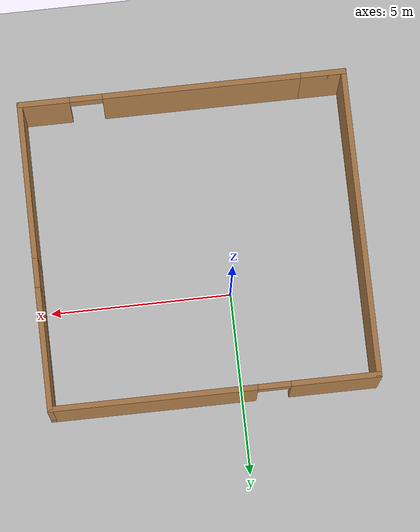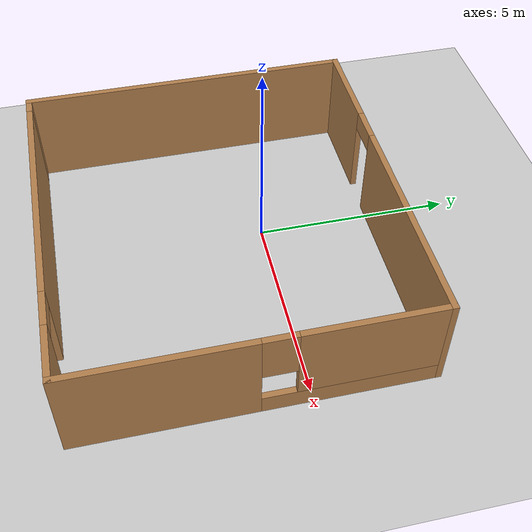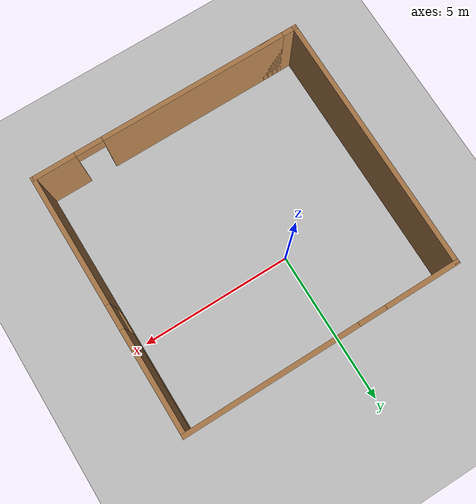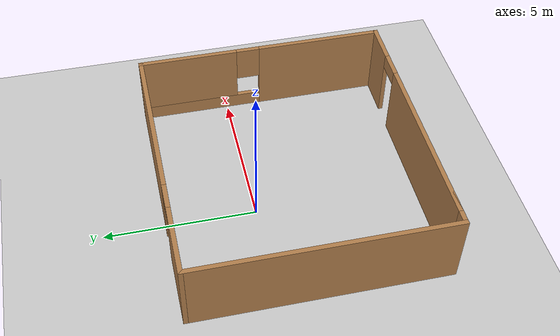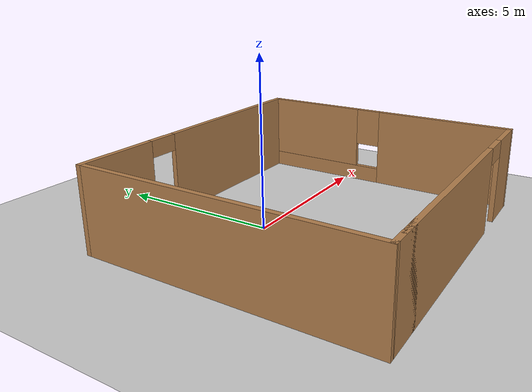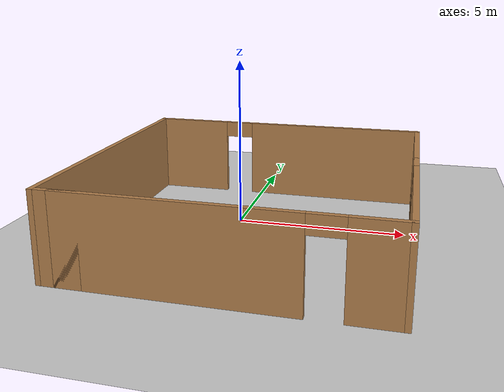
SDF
<sdf version="1.7">
 <world name="default">
  <light name="sun" type="directional">
   <pose>0 0 10 0 -0 0</pose>
   <diffuse>0.8 0.8 0.8 1</diffuse>
   <specular>0.2 0.2 0.2 1</specular>
   <attenuation>
    <range>1000</range>
    <constant>0.9</constant>
    <linear>0.01</linear>
    <quadratic>0.001</quadratic>
   </attenuation>
   <direction>-0.5 0.1 -0.9</direction>
   <spot><inner_angle>0</inner_angle><outer_angle>0</outer_angle><falloff>0</falloff></spot>
  </light>
  <model name="ground_plane">
   <static>1</static>
   <link name="link">
    <collision name="collision">
     <geometry><plane><normal>0 0 1</normal><size>100 100</size></plane></geometry>
     <surface><friction><ode><mu>100</mu><mu2>50</mu2></ode></friction></surface>
    </collision>
    <visual name="visual">
     <cast_shadows>0</cast_shadows>
     <geometry><plane><normal>0 0 1</normal><size>100 100</size></plane></geometry>
     <material>
      <script><uri>file://media/materials/scripts/gazebo.material</uri><name>Gazebo/Grey</name></script>
     </material>
    </visual>
   </link>
  </model>
  <gravity>0 0 -9.8</gravity>
  <magnetic_field>6e-06 2.3e-05 -4.2e-05</magnetic_field>
  <atmosphere type="adiabatic"/>
  <physics type="ode">
   <max_step_size>0.001</max_step_size>
   <real_time_factor>1</real_time_factor>
   <real_time_update_rate>1000</real_time_update_rate>
  </physics>
  <scene><ambient>0.4 0.4 0.4 1</ambient><background>0.7 0.7 0.7 1</background><shadows>1</shadows></scene>
  <audio><device>default</device></audio>
  <spherical_coordinates>
   <surface_model>EARTH_WGS84</surface_model>
   <latitude_deg>0</latitude_deg>
   <longitude_deg>0</longitude_deg>
   <elevation>0</elevation>
   <heading_deg>0</heading_deg>
  </spherical_coordinates>
  <model name="test_emptyRoom">
   <pose>0.77455 -1.25668 0 0 -0 0</pose>
   <link name="Wall_0">
    <pose>0.25 -4.175 0 0 -0 0</pose>
    <visual name="Wall_0_Visual_0">
     <pose>-1.16732 0 1.25 0 -0 0</pose>
     <geometry><box><size>6.16535 0.15 2.5</size></box></geometry>
     <material>
      <script><uri>file://media/materials/scripts/gazebo.material</uri><name>Gazebo/Wood</name></script>
      <ambient>1 1 1 1</ambient>
     </material>
     <meta><layer>0</layer></meta>
    </visual>
    <collision name="Wall_0_Collision_0">
     <geometry><box><size>6.16535 0.15 2.5</size></box></geometry>
     <pose>-1.16732 0 1.25 0 -0 0</pose>
    </collision>
    <visual name="Wall_0_Visual_1">
     <pose>3.53268 0 1.25 0 -0 0</pose>
     <geometry><box><size>1.43465 0.15 2.5</size></box></geometry>
     <material>
      <script><uri>file://media/materials/scripts/gazebo.material</uri><name>Gazebo/Wood</name></script>
      <ambient>1 1 1 1</ambient>
     </material>
     <meta><layer>0</layer></meta>
    </visual>
    <collision name="Wall_0_Collision_1">
     <geometry><box><size>1.43465 0.15 2.5</size></box></geometry>
     <pose>3.53268 0 1.25 0 -0 0</pose>
    </collision>
    <visual name="Wall_0_Visual_2">
     <pose>2.36535 0 2.25 0 -0 0</pose>
     <geometry><box><size>0.9 0.15 0.5</size></box></geometry>
     <material>
      <script><uri>file://media/materials/scripts/gazebo.material</uri><name>Gazebo/Wood</name></script>
      <ambient>1 1 1 1</ambient>
     </material>
     <meta><layer>0</layer></meta>
    </visual>
    <collision name="Wall_0_Collision_2">
     <geometry><box><size>0.9 0.15 0.5</size></box></geometry>
     <pose>2.36535 0 2.25 0 -0 0</pose>
    </collision>
   </link>
   <link name="Wall_1">
    <pose>4.425 0 0 0 -0 1.5708</pose>
    <visual name="Wall_1_Visual_0">
     <pose>-2.09463 0 1.25 0 -0 0</pose>
     <geometry><box><size>4.31075 0.15 2.5</size></box></geometry>
     <material>
      <script><uri>file://media/materials/scripts/gazebo.material</uri><name>Gazebo/Wood</name></script>
      <ambient>1 1 1 1</ambient>
     </material>
     <meta><layer>0</layer></meta>
    </visual>
    <collision name="Wall_1_Collision_0">
     <geometry><box><size>4.31075 0.15 2.5</size></box></geometry>
     <pose>-2.09463 0 1.25 0 -0 0</pose>
    </collision>
    <visual name="Wall_1_Visual_1">
     <pose>2.15537 0 0.25 0 -0 0</pose>
     <geometry><box><size>4.18925 0.15 0.5</size></box></geometry>
     <material>
      <script><uri>file://media/materials/scripts/gazebo.material</uri><name>Gazebo/Wood</name></script>
      <ambient>1 1 1 1</ambient>
     </material>
     <meta><layer>0</layer></meta>
    </visual>
    <collision name="Wall_1_Collision_1">
     <geometry><box><size>4.18925 0.15 0.5</size></box></geometry>
     <pose>2.15537 0 0.25 0 -0 0</pose>
    </collision>
    <visual name="Wall_1_Visual_2">
     <pose>2.55537 0 1.5 0 -0 0</pose>
     <geometry><box><size>3.38925 0.15 2</size></box></geometry>
     <material>
      <script><uri>file://media/materials/scripts/gazebo.material</uri><name>Gazebo/Wood</name></script>
      <ambient>1 1 1 1</ambient>
     </material>
     <meta><layer>0</layer></meta>
    </visual>
    <collision name="Wall_1_Collision_2">
     <geometry><box><size>3.38925 0.15 2</size></box></geometry>
     <pose>2.55537 0 1.5 0 -0 0</pose>
    </collision>
    <visual name="Wall_1_Visual_3">
     <pose>0.460747 0 1.9 0 -0 0</pose>
     <geometry><box><size>0.8 0.15 1.2</size></box></geometry>
     <material>
      <script><uri>file://media/materials/scripts/gazebo.material</uri><name>Gazebo/Wood</name></script>
      <ambient>1 1 1 1</ambient>
     </material>
     <meta><layer>0</layer></meta>
    </visual>
    <collision name="Wall_1_Collision_3">
     <geometry><box><size>0.8 0.15 1.2</size></box></geometry>
     <pose>0.460747 0 1.9 0 -0 0</pose>
    </collision>
   </link>
   <link name="Wall_2">
    <pose>0 4.175 0 0 -0 3.14159</pose>
    <visual name="Wall_2_Visual_0">
     <pose>-1.67195 0 1.25 0 -0 0</pose>
     <geometry><box><size>5.6561 0.15 2.5</size></box></geometry>
     <material>
      <script><uri>file://media/materials/scripts/gazebo.material</uri><name>Gazebo/Wood</name></script>
      <ambient>1 1 1 1</ambient>
     </material>
     <meta><layer>0</layer></meta>
    </visual>
    <collision name="Wall_2_Collision_0">
     <geometry><box><size>5.6561 0.15 2.5</size></box></geometry>
     <pose>-1.67195 0 1.25 0 -0 0</pose>
    </collision>
    <visual name="Wall_2_Visual_1">
     <pose>3.27805 0 1.25 0 -0 0</pose>
     <geometry><box><size>2.4439 0.15 2.5</size></box></geometry>
     <material>
      <script><uri>file://media/materials/scripts/gazebo.material</uri><name>Gazebo/Wood</name></script>
      <ambient>1 1 1 1</ambient>
     </material>
     <meta><layer>0</layer></meta>
    </visual>
    <collision name="Wall_2_Collision_1">
     <geometry><box><size>2.4439 0.15 2.5</size></box></geometry>
     <pose>3.27805 0 1.25 0 -0 0</pose>
    </collision>
    <visual name="Wall_2_Visual_2">
     <pose>1.6061 0 2.25 0 -0 0</pose>
     <geometry><box><size>0.9 0.15 0.5</size></box></geometry>
     <material>
      <script><uri>file://media/materials/scripts/gazebo.material</uri><name>Gazebo/Wood</name></script>
      <ambient>1 1 1 1</ambient>
     </material>
     <meta><layer>0</layer></meta>
    </visual>
    <collision name="Wall_2_Collision_2">
     <geometry><box><size>0.9 0.15 0.5</size></box></geometry>
     <pose>1.6061 0 2.25 0 -0 0</pose>
    </collision>
   </link>
   <link name="Wall_3">
    <collision name="Wall_3_Collision">
     <geometry><box><size>8.5 0.15 2.5</size></box></geometry>
     <pose>0 0 1.25 0 -0 0</pose>
    </collision>
    <visual name="Wall_3_Visual">
     <pose>0 0 1.25 0 -0 0</pose>
     <geometry><box><size>8.5 0.15 2.5</size></box></geometry>
     <material>
      <script><uri>file://media/materials/scripts/gazebo.material</uri><name>Gazebo/Wood</name></script>
      <ambient>1 1 1 1</ambient>
     </material>
     <meta><layer>0</layer></meta>
    </visual>
    <pose>-4.425 0 0 0 -0 -1.5708</pose>
   </link>
   <link name="Wall_4">
    <collision name="Wall_4_Collision">
     <geometry><box><size>1.25 0.15 2.5</size></box></geometry>
     <pose>0 0 1.25 0 -0 0</pose>
    </collision>
    <visual name="Wall_4_Visual">
     <pose>0 0 1.25 0 -0 0</pose>
     <geometry><box><size>1.25 0.15 2.5</size></box></geometry>
     <material>
      <script><uri>file://media/materials/scripts/gazebo.material</uri><name>Gazebo/Wood</name></script>
      <ambient>1 1 1 1</ambient>
     </material>
     <meta><layer>0</layer></meta>
    </visual>
    <pose>-3.875 -4.175 0 0 -0 0</pose>
   </link>
   <static>1</static>
  </model>
 </world>
</sdf>
